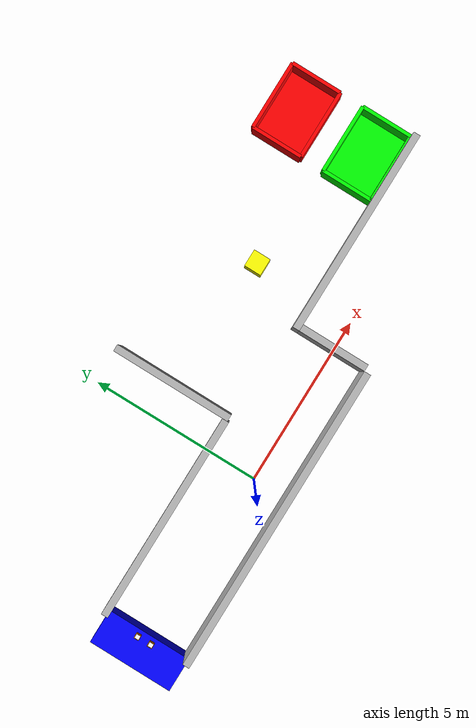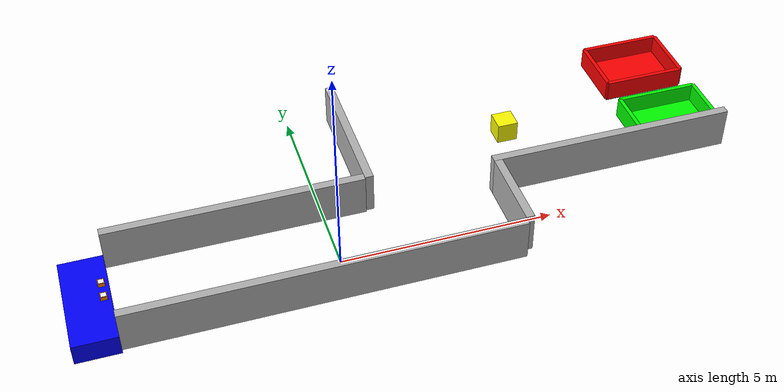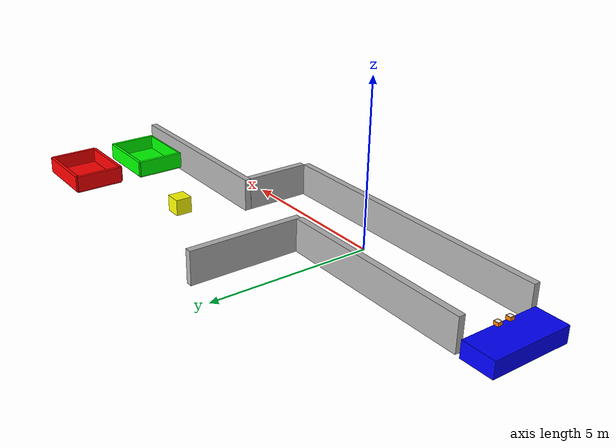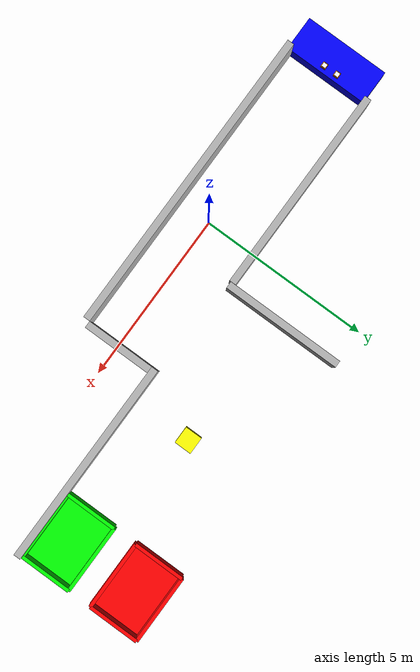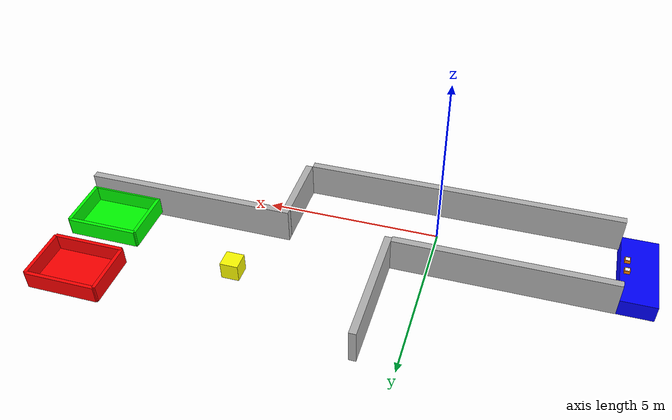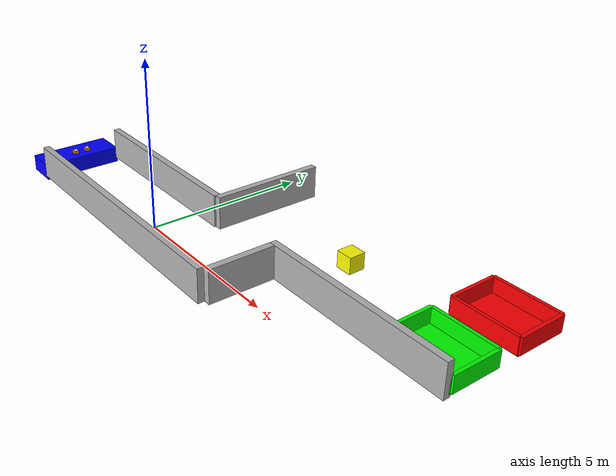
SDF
<sdf version="1.5">
 <world name="project">
  <physics name="default_physics" default="0" type="ode">
   <gravity>0 0 -9.8066</gravity>
   <ode>
    <solver><type>quick</type><iters>50</iters><sor>1.3</sor></solver>
    <constraints>
     <cfm>0</cfm>
     <erp>0.2</erp>
     <contact_max_correcting_vel>100</contact_max_correcting_vel>
     <contact_surface_layer>0.001</contact_surface_layer>
    </constraints>
   </ode>
   <max_step_size>0.002</max_step_size>
   <real_time_factor>1</real_time_factor>
   <real_time_update_rate>500</real_time_update_rate>
  </physics>
  <light type="directional" name="sun">
   <pose>0 0 10 0 0 0</pose>
   <diffuse>0.8 0.8 0.8 1</diffuse>
   <specular>0.2 0.2 0.2 1</specular>
   <attenuation>
    <range>1000</range>
    <constant>0.9</constant>
    <linear>0.01</linear>
    <quadratic>0.001</quadratic>
   </attenuation>
   <direction>-0.5 0.1 -0.9</direction>
  </light>
  <model name="wall_left_1">
   <static>true</static>
   <pose>-2 1.5 0.5 0 0 0</pose>
   <link name="link">
    <collision name="collision"><geometry><box><size>6 0.2 1</size></box></geometry></collision>
    <visual name="visual">
     <geometry><box><size>6 0.2 1</size></box></geometry>
     <material><ambient>0.7 0.7 0.7 1</ambient><diffuse>0.7 0.7 0.7 1</diffuse></material>
    </visual>
   </link>
  </model>
  <model name="wall_left_2">
   <static>true</static>
   <pose>1.1 3.2 0.5 0 0 -1.57</pose>
   <link name="link">
    <collision name="collision"><geometry><box><size>3.5 0.2 1</size></box></geometry></collision>
    <visual name="visual">
     <geometry><box><size>3.5 0.2 1</size></box></geometry>
     <material><ambient>0.7 0.7 0.7 1</ambient><diffuse>0.7 0.7 0.7 1</diffuse></material>
    </visual>
   </link>
  </model>
  <model name="wall_left_3">
   <static>true</static>
   <pose>7 1.2 0.5 0 0 0</pose>
   <link name="link">
    <collision name="collision"><geometry><box><size>6 0.2 1</size></box></geometry></collision>
    <visual name="visual">
     <geometry><box><size>6 0.2 1</size></box></geometry>
     <material><ambient>0.7 0.7 0.7 1</ambient><diffuse>0.7 0.7 0.7 1</diffuse></material>
    </visual>
   </link>
  </model>
  <model name="wall_right_1">
   <static>true</static>
   <pose>-0.5 -1 0.5 0 0 0</pose>
   <link name="link">
    <collision name="collision"><geometry><box><size>9 0.2 1</size></box></geometry></collision>
    <visual name="visual">
     <geometry><box><size>9 0.2 1</size></box></geometry>
     <material><ambient>0.7 0.7 0.7 1</ambient><diffuse>0.7 0.7 0.7 1</diffuse></material>
    </visual>
   </link>
  </model>
  <model name="wall_right_2">
   <static>true</static>
   <pose>4.1 0.1 0.5 0 0 -1.57</pose>
   <link name="link">
    <collision name="collision"><geometry><box><size>2 0.2 1</size></box></geometry></collision>
    <visual name="visual">
     <geometry><box><size>2 0.2 1</size></box></geometry>
     <material><ambient>0.7 0.7 0.7 1</ambient><diffuse>0.7 0.7 0.7 1</diffuse></material>
    </visual>
   </link>
  </model>
  <model name="cube">
   <static>true</static>
   <pose>5 3 0.3 0 0 0</pose>
   <link name="link">
    <collision name="collision"><geometry><box><size>0.5 0.5 0.5</size></box></geometry></collision>
    <visual name="visual">
     <geometry><box><size>0.5 0.5 0.5</size></box></geometry>
     <material><ambient>1 1 0 1</ambient><diffuse>1 1 0 1</diffuse></material>
    </visual>
   </link>
  </model>
  <model name="package">
   <pose>-5.15 0.04 0.51 0 0 0</pose>
   <static>false</static>
   <link name="package_link">
    <inertial>
     <mass>0.1</mass>
     <inertia>
      <ixx>0.000027</ixx>
      <iyy>0.000027</iyy>
      <izz>0.0000375</izz>
      <ixy>0</ixy>
      <ixz>0</ixz>
      <iyz>0</iyz>
     </inertia>
    </inertial>
    <collision name="collision">
     <geometry><box><size>0.15 0.15 0.10</size></box></geometry>
     <surface>
      <contact>
       <ode><kp>5000000.0</kp><kd>1000.0</kd><max_vel>0.001</max_vel><min_depth>0.0001</min_depth></ode>
      </contact>
      <friction><ode><mu>3.0</mu><mu2>3.0</mu2><slip1>0.0</slip1><slip2>0.0</slip2></ode></friction>
      <bounce><restitution_coefficient>0.0</restitution_coefficient><threshold>0.0</threshold></bounce>
     </surface>
    </collision>
    <visual name="visual">
     <geometry><box><size>0.15 0.15 0.10</size></box></geometry>
     <material><ambient>1 0.5 0 1</ambient><diffuse>1 0.5 0 1</diffuse></material>
    </visual>
    <velocity_decay><linear>0.5</linear><angular>0.5</angular></velocity_decay>
   </link>
   <include><uri>model://aruco1</uri><pose>0 0 0.05 0 0 1.57</pose></include>
   <joint name="tag_joint_1" type="fixed"><parent>package_link</parent><child>aruco1::aruco_link</child></joint>
  </model>
  <model name="package2">
   <pose>-5.15 0.45 0.51 0 0 0</pose>
   <static>false</static>
   <link name="package2_link">
    <inertial>
     <mass>0.1</mass>
     <inertia>
      <ixx>0.000027</ixx>
      <iyy>0.000027</iyy>
      <izz>0.0000375</izz>
      <ixy>0</ixy>
      <ixz>0</ixz>
      <iyz>0</iyz>
     </inertia>
    </inertial>
    <collision name="collision">
     <geometry><box><size>0.15 0.15 0.10</size></box></geometry>
     <surface>
      <contact>
       <ode><kp>5000000.0</kp><kd>1000.0</kd><max_vel>0.001</max_vel><min_depth>0.0001</min_depth></ode>
      </contact>
      <friction><ode><mu>3.0</mu><mu2>3.0</mu2><slip1>0.0</slip1><slip2>0.0</slip2></ode></friction>
      <bounce><restitution_coefficient>0.0</restitution_coefficient><threshold>0.0</threshold></bounce>
     </surface>
    </collision>
    <visual name="visual">
     <geometry><box><size>0.15 0.15 0.10</size></box></geometry>
     <material><ambient>1 0.5 0 1</ambient><diffuse>1 0.5 0 1</diffuse></material>
    </visual>
    <velocity_decay><linear>0.5</linear><angular>0.5</angular></velocity_decay>
   </link>
   <include><uri>model://aruco2</uri><pose>0 0 0.05 0 0 1.57</pose></include>
   <joint name="tag_joint_2" type="fixed"><parent>package2_link</parent><child>aruco2::aruco_link</child></joint>
  </model>
  <model name="place">
   <static>true</static>
   <pose>9 4.25 0.1 0 0 0</pose>
   <link name="link">
    <collision name="base_collision"><geometry><box><size>2 1.5 0.1</size></box></geometry></collision>
    <visual name="base_visual">
     <geometry><box><size>2 1.5 0.1</size></box></geometry>
     <material><ambient>1 0 0 1</ambient><diffuse>1 0 0 1</diffuse></material>
    </visual>
    <collision name="wall_1_coll">
     <pose>1 0 0.25 0 0 0</pose>
     <geometry><box><size>0.1 1.5 0.5</size></box></geometry>
    </collision>
    <visual name="wall_1_vis">
     <pose>1 0 0.25 0 0 0</pose>
     <geometry><box><size>0.1 1.5 0.5</size></box></geometry>
     <material><ambient>1 0 0 1</ambient></material>
    </visual>
    <collision name="wall_2_coll">
     <pose>-1 0 0.25 0 0 0</pose>
     <geometry><box><size>0.1 1.5 0.5</size></box></geometry>
    </collision>
    <visual name="wall_2_vis">
     <pose>-1 0 0.25 0 0 0</pose>
     <geometry><box><size>0.1 1.5 0.5</size></box></geometry>
     <material><ambient>1 0 0 1</ambient></material>
    </visual>
    <collision name="wall_3_coll">
     <pose>0 0.75 0.25 0 0 0</pose>
     <geometry><box><size>2 0.1 0.5</size></box></geometry>
    </collision>
    <visual name="wall_3_vis">
     <pose>0 0.75 0.25 0 0 0</pose>
     <geometry><box><size>2 0.1 0.5</size></box></geometry>
     <material><ambient>1 0 0 1</ambient></material>
    </visual>
    <collision name="wall_4_coll">
     <pose>0 -0.75 0.25 0 0 0</pose>
     <geometry><box><size>2 0.1 0.5</size></box></geometry>
    </collision>
    <visual name="wall_4_vis">
     <pose>0 -0.75 0.25 0 0 0</pose>
     <geometry><box><size>2 0.1 0.5</size></box></geometry>
     <material><ambient>1 0 0 1</ambient></material>
    </visual>
   </link>
  </model>
  <model name="place2">
   <static>true</static>
   <pose>9 2.05 0.1 0 0 0</pose>
   <link name="link">
    <collision name="base_collision"><geometry><box><size>2 1.5 0.1</size></box></geometry></collision>
    <visual name="base_visual">
     <geometry><box><size>2 1.5 0.1</size></box></geometry>
     <material><ambient>0 1 0 1</ambient><diffuse>0 1 0 1</diffuse></material>
    </visual>
    <collision name="wall_1_coll">
     <pose>1 0 0.25 0 0 0</pose>
     <geometry><box><size>0.1 1.5 0.5</size></box></geometry>
    </collision>
    <visual name="wall_1_vis">
     <pose>1 0 0.25 0 0 0</pose>
     <geometry><box><size>0.1 1.5 0.5</size></box></geometry>
     <material><ambient>0 1 0 1</ambient></material>
    </visual>
    <collision name="wall_2_coll">
     <pose>-1 0 0.25 0 0 0</pose>
     <geometry><box><size>0.1 1.5 0.5</size></box></geometry>
    </collision>
    <visual name="wall_2_vis">
     <pose>-1 0 0.25 0 0 0</pose>
     <geometry><box><size>0.1 1.5 0.5</size></box></geometry>
     <material><ambient>0 1 0 1</ambient></material>
    </visual>
    <collision name="wall_3_coll">
     <pose>0 0.75 0.25 0 0 0</pose>
     <geometry><box><size>2 0.1 0.5</size></box></geometry>
    </collision>
    <visual name="wall_3_vis">
     <pose>0 0.75 0.25 0 0 0</pose>
     <geometry><box><size>2 0.1 0.5</size></box></geometry>
     <material><ambient>0 1 0 1</ambient></material>
    </visual>
    <collision name="wall_4_coll">
     <pose>0 -0.75 0.25 0 0 0</pose>
     <geometry><box><size>2 0.1 0.5</size></box></geometry>
    </collision>
    <visual name="wall_4_vis">
     <pose>0 -0.75 0.25 0 0 0</pose>
     <geometry><box><size>2 0.1 0.5</size></box></geometry>
     <material><ambient>0 1 0 1</ambient></material>
    </visual>
   </link>
  </model>
  <model name="arrive">
   <static>true</static>
   <pose>-5.5 0.2 0.1 0 0 0</pose>
   <link name="link">
    <collision name="collision"><geometry><box><size>2 5 0.5</size></box></geometry></collision>
    <visual name="visual">
     <geometry><box><size>1 2.5 0.5</size></box></geometry>
     <material><ambient>0 0 1 1</ambient><diffuse>0 0 1 1</diffuse></material>
    </visual>
   </link>
  </model>
  <plugin filename="gz-sim-physics-system" name="gz::sim::systems::Physics"/>
  <plugin filename="gz-sim-user-commands-system" name="gz::sim::systems::UserCommands"/>
  <plugin filename="gz-sim-scene-broadcaster-system" name="gz::sim::systems::SceneBroadcaster"/>
 </world>
</sdf>

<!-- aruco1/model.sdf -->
<sdf version="1.6">
  <model name="aruco1">
    <static>false</static> <link name="aruco_link">

      <inertial>
        <mass>0.001</mass> <inertia>
          <ixx>0.00000012</ixx>
          <ixy>0</ixy>
          <ixz>0</ixz>
          <iyy>0.00000012</iyy>
          <iyz>0</iyz>
          <izz>0.000000000001</izz>
        </inertia>
      </inertial>

      <visual name="aruco_visual">
        <pose>0 0 0 0 0 0</pose>
        <geometry>
          <box>
            <size>0.12 0.12 0.001</size>
          </box>
        </geometry>
        <material>
          <diffuse>1 1 1 1</diffuse>
          <specular>0.4 0.4 0.4 1</specular>
          <pbr>
            <metal>
              <albedo_map>model://aruco1/materials/textures/aruco-1.png</albedo_map>
            </metal>
          </pbr>
        </material>
      </visual>

      </link>
  </model>
</sdf>

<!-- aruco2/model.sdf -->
<sdf version="1.6">
  <model name="aruco2">
    <static>false</static> <link name="aruco_link">

      <inertial>
        <mass>0.001</mass> <inertia>
          <ixx>0.00000012</ixx>
          <ixy>0</ixy>
          <ixz>0</ixz>
          <iyy>0.00000012</iyy>
          <iyz>0</iyz>
          <izz>0.000000000001</izz>
        </inertia>
      </inertial>

      <visual name="aruco_visual">
        <pose>0 0 0 0 0 0</pose>
        <geometry>
          <box>
            <size>0.12 0.12 0.001</size>
          </box>
        </geometry>
        <material>
          <diffuse>1 1 1 1</diffuse>
          <specular>0.4 0.4 0.4 1</specular>
          <pbr>
            <metal>
              <albedo_map>model://aruco2/materials/textures/aruco-2.png</albedo_map>
            </metal>
          </pbr>
        </material>
      </visual>

      </link>
  </model>
</sdf>
